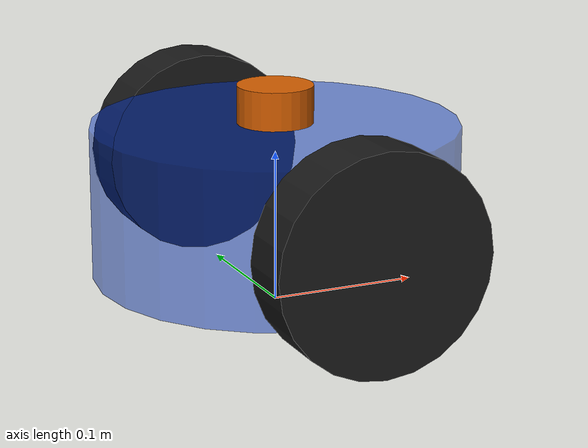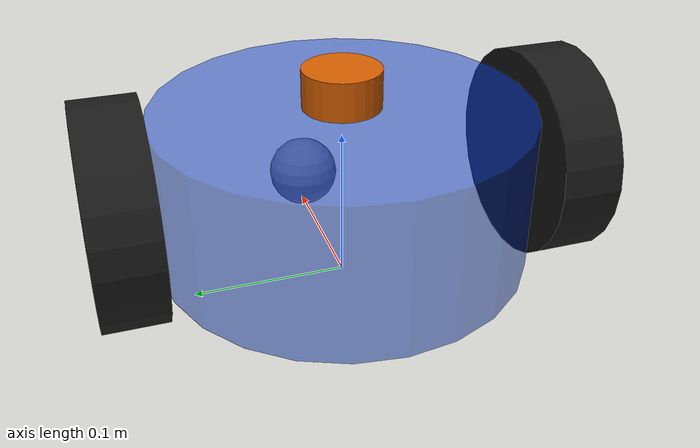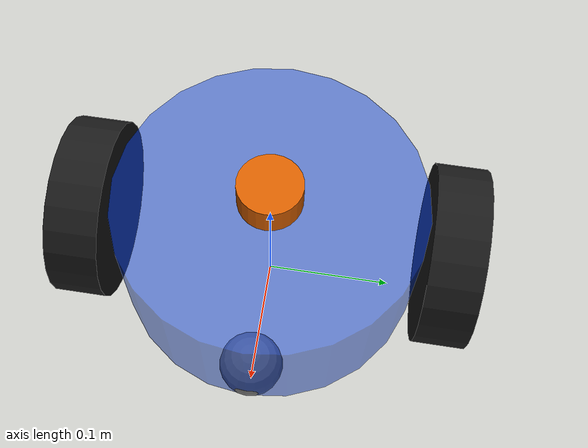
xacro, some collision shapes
<?xml version="1.0"?>
<robot name="my_robot" xmlns:xacro="http://www.ros.org/wiki/xacro">

    <xacro:property name="PI" value="3.14159265359"/>

    <xacro:property name="base_radius" value="0.12" /> <!-- 圆柱体车身的半径 -->
    <xacro:property name="base_height" value="0.1" />  <!-- 圆柱体车身的高度 -->
    <xacro:property name="base_link_mass" value="1.5" /> <!-- 质量 kg -->

    <!-- 驱动轮属性 -->
    <xacro:property name="wheel_radius" value="0.070" /> <!-- 半径 m -->
    <xacro:property name="wheel_length" value="0.04" /> <!-- 宽度 m -->
    <xacro:property name="wheel_mass" value="0.15" />
    <!-- 关键修改: 轮子Y轴位置现在基于车身半径计算 -->
    <xacro:property name="wheel_joint_y" value="${base_radius + wheel_length/2}" /> <!-- Y轴偏移 -->

    <!-- 万向轮属性 -->
    <xacro:property name="caster_radius" value="0.025" />
    <xacro:property name="caster_mass" value="0.05" />

    <!-- 雷达属性 -->
    <xacro:property name="lidar_size" value="0.05"/>
    <xacro:property name="lidar_mass" value="0.2"/>

    <!-- 引入底盘和雷达的宏文件 -->
    <xacro:include filename="$(find robot_simulation)/urdf/car_base.xacro" />
    <xacro:include filename="$(find robot_simulation)/urdf/rplidar.xacro" />

    <!-- 创建一个虚拟的 base_footprint 作为根link -->
    <link name="base_footprint"/>

    <joint name="base_footprint_joint" type="fixed">
        <parent link="base_footprint"/>
        <child link="base_link"/>
        <origin xyz="0 0 ${wheel_radius}" rpy="0 0 0"/>
    </joint>

    <!-- 实例化机器人底盘 -->
    <xacro:car_base />

    <!-- 实例化激光雷达 -->
    <xacro:rplidar />

    <!-- 连接雷达和车体 -->
    <joint name="laser_joint" type="fixed">
        <parent link="base_link"/>
        <child link="laser_link"/>
        <!-- 将雷达放置在圆柱体车身的顶部中心 -->
        <origin xyz="0 0 ${base_height/2 + lidar_size/4}" rpy="0 0 0"/>
    </joint>

</robot>

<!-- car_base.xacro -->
<robot xmlns:xacro="http://www.ros.org/wiki/xacro">

    <xacro:include filename="$(find robot_simulation)/urdf/inertia.xacro" />

    <xacro:macro name="car_base">

        <link name="base_link">
            <visual>
                <geometry>
                    <cylinder radius="${base_radius}" length="${base_height}"/>
                </geometry>
                <origin xyz="0 0 0" rpy="0 0 0"/>
                <material name="blue">
                    <color rgba="0.0 0.2 0.8 0.5"/>
                </material>
            </visual>
            <collision>
                <geometry>
                    <cylinder radius="${base_radius}" length="${base_height}"/>
                </geometry>
                <origin xyz="0 0 0" rpy="0 0 0"/>
            </collision>
            <xacro:cylinder_inertial m="${base_link_mass}" r="${base_radius}" h="${base_height}"/>
        </link>

        <gazebo reference="base_link">
            <material>Gazebo/Orange</material>
            <self_collide>false</self_collide>
        </gazebo>

        <xacro:macro name="drive_wheel" params="prefix reflect">
            <link name="${prefix}_wheel_link">
                <visual>
                    <geometry>
                        <cylinder radius="${wheel_radius}" length="${wheel_length}"/>
                    </geometry>
                    <origin xyz="0 0 0" rpy="${PI/2} 0 0"/>
                    <material name="black">
                        <color rgba="0.1 0.1 0.1 1.0"/>
                    </material>
                </visual>
                <collision>
                    <geometry>
                        <cylinder radius="${wheel_radius}" length="${wheel_length}"/>
                    </geometry>
                     <origin xyz="0 0 0" rpy="${PI/2} 0 0"/>
                </collision>
                <xacro:cylinder_inertial m="${wheel_mass}" r="${wheel_radius}" h="${wheel_length}"/>
            </link>

            <joint name="${prefix}_wheel_joint" type="continuous">
                <parent link="base_link"/>
                <child link="${prefix}_wheel_link"/>
                <origin xyz="0 ${reflect * wheel_joint_y} 0" rpy="0 0 0"/>
                <axis xyz="0 1 0"/>
            </joint>

            <gazebo reference="${prefix}_wheel_link">
                <material>Gazebo/Black</material>
            </gazebo>
        </xacro:macro>

        <xacro:drive_wheel prefix="left" reflect="1" />
        <xacro:drive_wheel prefix="right" reflect="-1" />

        <link name="caster_wheel_link">
            <visual>
                <geometry>
                    <sphere radius="${caster_radius}"/>
                </geometry>
                <material name="grey">
                    <color rgba="0.5 0.5 0.5 1.0"/>
                </material>
            </visual>
            <collision>
                <geometry>
                    <sphere radius="${caster_radius}"/>
                </geometry>
            </collision>
            <xacro:sphere_inertial m="${caster_mass}" r="${caster_radius}"/>
        </link>

        <joint name="caster_wheel_joint" type="fixed">
            <parent link="base_link"/>
            <child link="caster_wheel_link"/>
            <origin xyz="${base_radius * 0.8} 0 ${-wheel_radius + caster_radius}" rpy="0 0 0"/>
        </joint>

        <gazebo reference="caster_wheel_link">
            <material>Gazebo/Orange</material>
            <mu1>0.0</mu1>
            <mu2>0.0</mu2>
        </gazebo>

        <gazebo>
            <plugin name="differential_drive_controller" filename="libgazebo_ros_diff_drive.so">
                <alwaysOn>true</alwaysOn>
                <updateRate>100</updateRate>
                <leftJoint>left_wheel_joint</leftJoint>
                <rightJoint>right_wheel_joint</rightJoint>
                <wheelSeparation>${2 * wheel_joint_y}</wheelSeparation>
                <wheelDiameter>${2 * wheel_radius}</wheelDiameter>
                <wheelTorque>20.0</wheelTorque>
                <wheelAcceleration>1.0</wheelAcceleration>
                <commandTopic>cmd_vel</commandTopic>
                <odometryTopic>odom</odometryTopic>
                <odometryFrame>odom</odometryFrame>
                <robotBaseFrame>base_footprint</robotBaseFrame>
            </plugin>
        </gazebo>

    </xacro:macro>
</robot>

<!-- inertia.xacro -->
<robot xmlns:xacro="http://www.ros.org/wiki/xacro" name="inertia_macros">
    <!-- Macro for inertia -->
    <xacro:macro name="sphere_inertial" params="m r">
        <inertial>
            <mass value="${m}" />
            <inertia ixx="${2*m*r*r/5}" ixy="0" ixz="0"
                     iyy="${2*m*r*r/5}" iyz="0" izz="${2*m*r*r/5}" />
        </inertial>
    </xacro:macro>

    <xacro:macro name="cylinder_inertial" params="m r h">
        <inertial>
            <mass value="${m}" />
            <inertia ixx="${m*(3*r*r+h*h)/12}" ixy = "0" ixz = "0"
                     iyy="${m*(3*r*r+h*h)/12}" iyz = "0" izz="${m*r*r/2}" />
        </inertial>
    </xacro:macro>

    <xacro:macro name="box_inertial" params="m x y z">
        <inertial>
            <mass value="${m}" />
            <inertia ixx="${m*(y*y+z*z)/12}" ixy = "0" ixz = "0"
                     iyy="${m*(x*x+z*z)/12}" iyz = "0" izz="${m*(x*x+y*y)/12}" />
        </inertial>
    </xacro:macro>
</robot>

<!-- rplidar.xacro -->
<robot xmlns:xacro="http://www.ros.org/wiki/xacro">

    <!-- 引入惯性宏文件 -->
    <xacro:include filename="$(find robot_simulation)/urdf/inertia.xacro" />

    <!-- 宏: RPLIDAR A1 -->
    <xacro:macro name="rplidar">
        <link name="laser_link">
            <visual>
                <geometry>
                    <mesh filename="package://robot_simulation/meshes/rplidar.dae"/>
                </geometry>
            </visual>
            <collision>
                <geometry>
                    <cylinder radius="${lidar_size/2}" length="${lidar_size/2}"/>
                </geometry>
            </collision>
            <xacro:cylinder_inertial m="${lidar_mass}" r="${lidar_size/2}" h="${lidar_size/2}"/>
        </link>

        <!-- Gazebo 激光雷达插件 -->
        <gazebo reference="laser_link">
            <sensor type="ray" name="rplidar_sensor">
                <pose>0 0 0 0 0 0</pose>
                <visualize>true</visualize>
                <update_rate>10</update_rate>
                <ray>
                    <scan>
                        <horizontal>
                            <samples>360</samples>
                            <resolution>1</resolution>
                            <min_angle>-${PI}</min_angle>
                            <max_angle>${PI}</max_angle>
                        </horizontal>
                    </scan>
                    <range>
                        <min>0.15</min>
                        <max>12.0</max>
                        <resolution>0.01</resolution>
                    </range>
                    <noise>
                        <type>gaussian</type>
                        <mean>0.0</mean>
                        <stddev>0.01</stddev>
                    </noise>
                </ray>
                <plugin name="gazebo_ros_laser_controller" filename="libgazebo_ros_laser.so">
                    <topicName>/scan</topicName>
                    <frameName>laser_link</frameName>
                </plugin>
            </sensor>
        </gazebo>
    </xacro:macro>
</robot>
